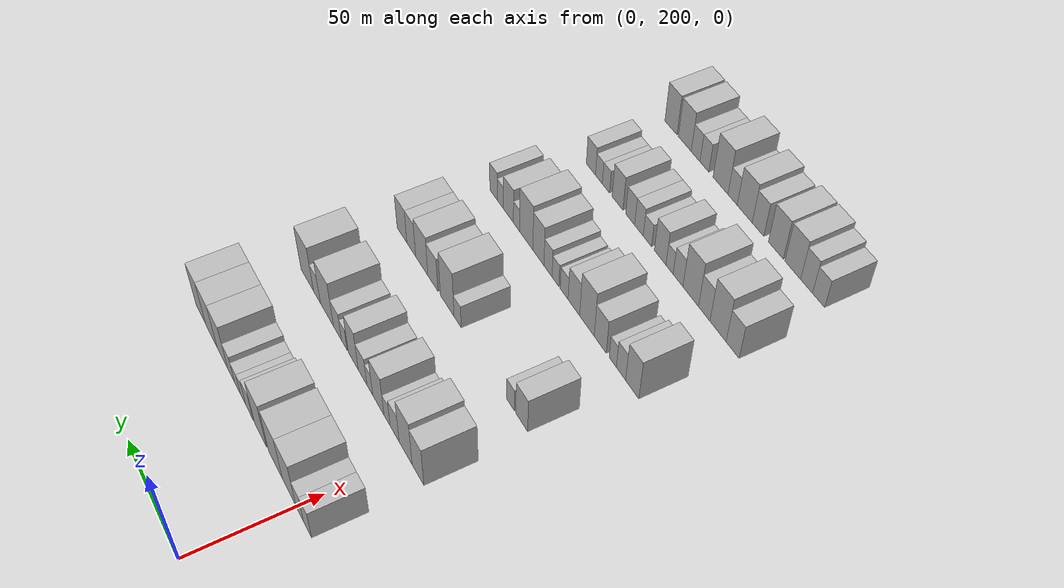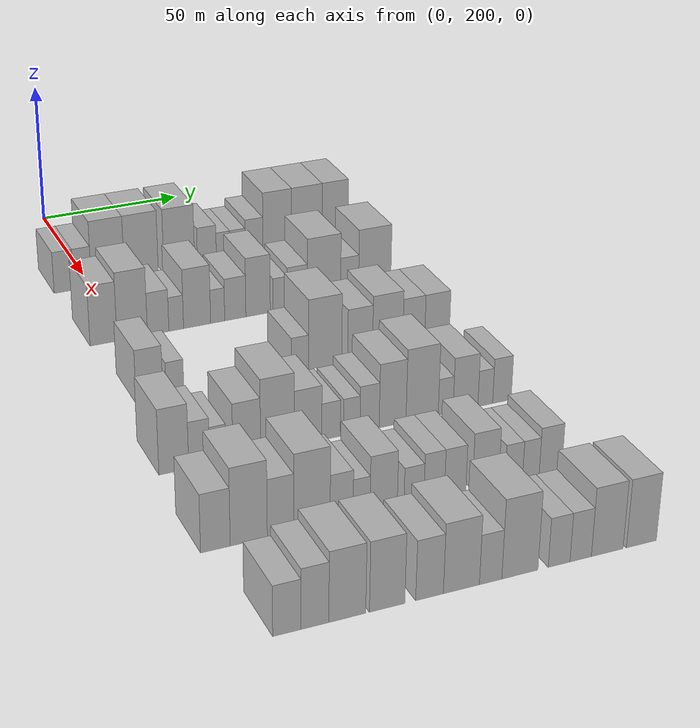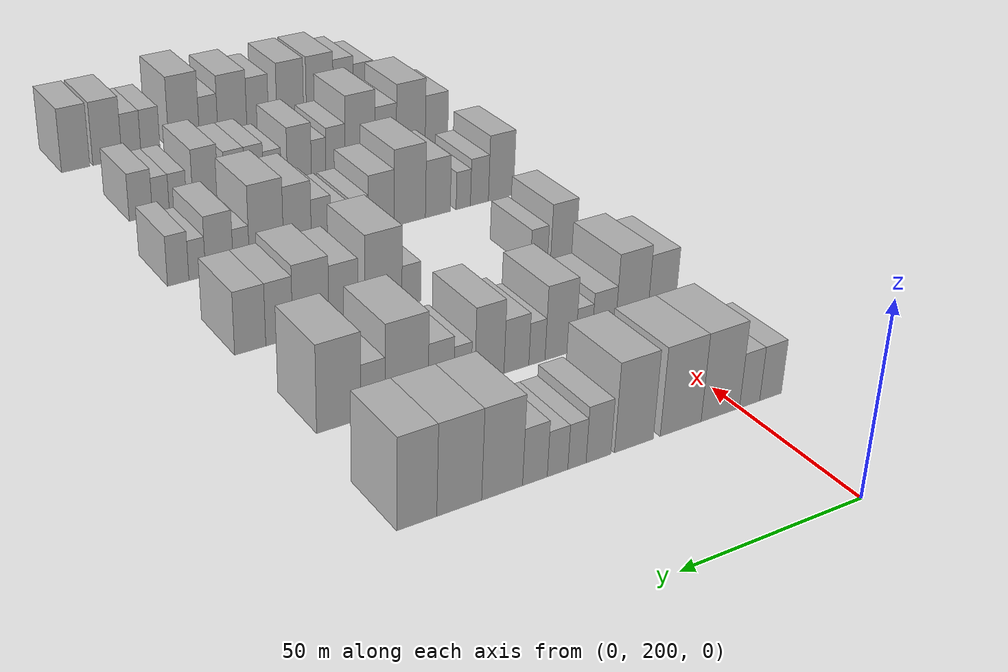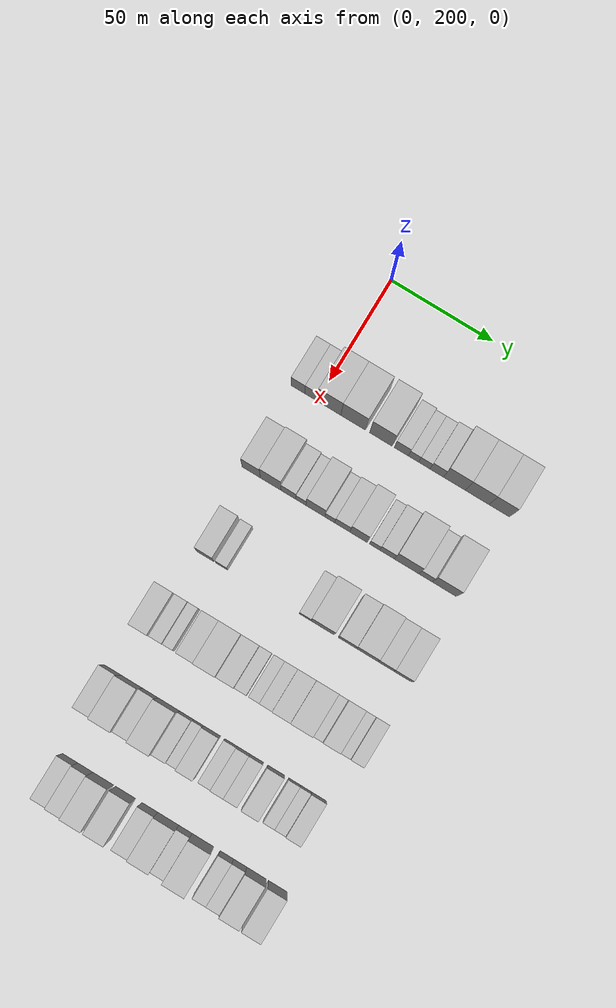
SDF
<sdf version="1.6">
 <world name="default">
  <model name="building_93">
   <static>1</static>
   <pose>50.0000 190.5411 0 0.000000 0.000000 0.000000</pose>
   <link name="link">
    <pose>0 0 7.50 0 0 0</pose>
    <collision name="collision"><geometry><box><size>20.0000 6.7310 15.0000</size></box></geometry></collision>
    <visual name="visual">
     <cast_shadows>0</cast_shadows>
     <geometry><box><size>20.0000 6.7310 15.0000</size></box></geometry>
     <material>
      <script>
       <uri>model://HANNAS_wall/materials/scripts</uri>
       <uri>model://HANNAS_wall/materials/textures</uri>
       <name>vrc/HANNAS_wall</name>
      </script>
     </material>
    </visual>
   </link>
  </model>
  <model name="building_94">
   <static>1</static>
   <pose>50.0000 196.9932 0 0.000000 0.000000 0.000000</pose>
   <link name="link">
    <pose>0 0 7.50 0 0 0</pose>
    <collision name="collision"><geometry><box><size>20.0000 6.1733 15.0000</size></box></geometry></collision>
    <visual name="visual">
     <cast_shadows>0</cast_shadows>
     <geometry><box><size>20.0000 6.1733 15.0000</size></box></geometry>
     <material>
      <script>
       <uri>model://HANNAS_wall/materials/scripts</uri>
       <uri>model://HANNAS_wall/materials/textures</uri>
       <name>vrc/HANNAS_wall</name>
      </script>
     </material>
    </visual>
   </link>
  </model>
  <model name="building_95">
   <static>1</static>
   <pose>50.0000 205.8613 0 0.000000 0.000000 0.000000</pose>
   <link name="link">
    <pose>0 0 12.00 0 0 0</pose>
    <collision name="collision"><geometry><box><size>20.0000 11.5629 24.0000</size></box></geometry></collision>
    <visual name="visual">
     <cast_shadows>0</cast_shadows>
     <geometry><box><size>20.0000 11.5629 24.0000</size></box></geometry>
     <material>
      <script>
       <uri>model://HANNAS_wall/materials/scripts</uri>
       <uri>model://HANNAS_wall/materials/textures</uri>
       <name>vrc/HANNAS_wall</name>
      </script>
     </material>
    </visual>
   </link>
  </model>
  <model name="building_96">
   <static>1</static>
   <pose>50.0000 217.6340 0 0.000000 0.000000 0.000000</pose>
   <link name="link">
    <pose>0 0 12.00 0 0 0</pose>
    <collision name="collision"><geometry><box><size>20.0000 11.9823 24.0000</size></box></geometry></collision>
    <visual name="visual">
     <cast_shadows>0</cast_shadows>
     <geometry><box><size>20.0000 11.9823 24.0000</size></box></geometry>
     <material>
      <script>
       <uri>model://HANNAS_wall/materials/scripts</uri>
       <uri>model://HANNAS_wall/materials/textures</uri>
       <name>vrc/HANNAS_wall</name>
      </script>
     </material>
    </visual>
   </link>
  </model>
  <model name="building_97">
   <static>1</static>
   <pose>50.0000 231.1465 0 0.000000 0.000000 0.000000</pose>
   <link name="link">
    <pose>0 0 12.00 0 0 0</pose>
    <collision name="collision"><geometry><box><size>20.0000 11.0429 24.0000</size></box></geometry></collision>
    <visual name="visual">
     <cast_shadows>0</cast_shadows>
     <geometry><box><size>20.0000 11.0429 24.0000</size></box></geometry>
     <material>
      <script>
       <uri>model://HANNAS_wall/materials/scripts</uri>
       <uri>model://HANNAS_wall/materials/textures</uri>
       <name>vrc/HANNAS_wall</name>
      </script>
     </material>
    </visual>
   </link>
  </model>
  <model name="building_98">
   <static>1</static>
   <pose>50.0000 241.1148 0 0.000000 0.000000 0.000000</pose>
   <link name="link">
    <pose>0 0 7.50 0 0 0</pose>
    <collision name="collision"><geometry><box><size>20.0000 6.8937 15.0000</size></box></geometry></collision>
    <visual name="visual">
     <cast_shadows>0</cast_shadows>
     <geometry><box><size>20.0000 6.8937 15.0000</size></box></geometry>
     <material>
      <script>
       <uri>model://HANNAS_wall/materials/scripts</uri>
       <uri>model://HANNAS_wall/materials/textures</uri>
       <name>vrc/HANNAS_wall</name>
      </script>
     </material>
    </visual>
   </link>
  </model>
  <model name="building_99">
   <static>1</static>
   <pose>50.0000 247.0590 0 0.000000 0.000000 0.000000</pose>
   <link name="link">
    <pose>0 0 6.00 0 0 0</pose>
    <collision name="collision"><geometry><box><size>20.0000 4.9947 12.0000</size></box></geometry></collision>
    <visual name="visual">
     <cast_shadows>0</cast_shadows>
     <geometry><box><size>20.0000 4.9947 12.0000</size></box></geometry>
     <material>
      <script>
       <uri>model://HANNAS_wall/materials/scripts</uri>
       <uri>model://HANNAS_wall/materials/textures</uri>
       <name>vrc/HANNAS_wall</name>
      </script>
     </material>
    </visual>
   </link>
  </model>
  <model name="building_100">
   <static>1</static>
   <pose>50.0000 252.3329 0 0.000000 0.000000 0.000000</pose>
   <link name="link">
    <pose>0 0 6.00 0 0 0</pose>
    <collision name="collision"><geometry><box><size>20.0000 5.5530 12.0000</size></box></geometry></collision>
    <visual name="visual">
     <cast_shadows>0</cast_shadows>
     <geometry><box><size>20.0000 5.5530 12.0000</size></box></geometry>
     <material>
      <script>
       <uri>model://HANNAS_wall/materials/scripts</uri>
       <uri>model://HANNAS_wall/materials/textures</uri>
       <name>vrc/HANNAS_wall</name>
      </script>
     </material>
    </visual>
   </link>
  </model>
  <model name="building_101">
   <static>1</static>
   <pose>50.0000 258.4077 0 0.000000 0.000000 0.000000</pose>
   <link name="link">
    <pose>0 0 7.50 0 0 0</pose>
    <collision name="collision"><geometry><box><size>20.0000 6.5966 15.0000</size></box></geometry></collision>
    <visual name="visual">
     <cast_shadows>0</cast_shadows>
     <geometry><box><size>20.0000 6.5966 15.0000</size></box></geometry>
     <material>
      <script>
       <uri>model://HANNAS_wall/materials/scripts</uri>
       <uri>model://HANNAS_wall/materials/textures</uri>
       <name>vrc/HANNAS_wall</name>
      </script>
     </material>
    </visual>
   </link>
  </model>
  <model name="building_102">
   <static>1</static>
   <pose>50.0000 267.0427 0 0.000000 0.000000 0.000000</pose>
   <link name="link">
    <pose>0 0 12.00 0 0 0</pose>
    <collision name="collision"><geometry><box><size>20.0000 10.6733 24.0000</size></box></geometry></collision>
    <visual name="visual">
     <cast_shadows>0</cast_shadows>
     <geometry><box><size>20.0000 10.6733 24.0000</size></box></geometry>
     <material>
      <script>
       <uri>model://HANNAS_wall/materials/scripts</uri>
       <uri>model://HANNAS_wall/materials/textures</uri>
       <name>vrc/HANNAS_wall</name>
      </script>
     </material>
    </visual>
   </link>
  </model>
  <model name="building_103">
   <static>1</static>
   <pose>50.0000 278.0843 0 0.000000 0.000000 0.000000</pose>
   <link name="link">
    <pose>0 0 12.00 0 0 0</pose>
    <collision name="collision"><geometry><box><size>20.0000 11.4099 24.0000</size></box></geometry></collision>
    <visual name="visual">
     <cast_shadows>0</cast_shadows>
     <geometry><box><size>20.0000 11.4099 24.0000</size></box></geometry>
     <material>
      <script>
       <uri>model://HANNAS_wall/materials/scripts</uri>
       <uri>model://HANNAS_wall/materials/textures</uri>
       <name>vrc/HANNAS_wall</name>
      </script>
     </material>
    </visual>
   </link>
  </model>
  <model name="building_104">
   <static>1</static>
   <pose>50.0000 288.7622 0 0.000000 0.000000 0.000000</pose>
   <link name="link">
    <pose>0 0 12.00 0 0 0</pose>
    <collision name="collision"><geometry><box><size>20.0000 9.9458 24.0000</size></box></geometry></collision>
    <visual name="visual">
     <cast_shadows>0</cast_shadows>
     <geometry><box><size>20.0000 9.9458 24.0000</size></box></geometry>
     <material>
      <script>
       <uri>model://HANNAS_wall/materials/scripts</uri>
       <uri>model://HANNAS_wall/materials/textures</uri>
       <name>vrc/HANNAS_wall</name>
      </script>
     </material>
    </visual>
   </link>
  </model>
  <model name="building_234">
   <static>1</static>
   <pose>90.0000 192.1919 0 0.000000 0.000000 0.000000</pose>
   <link name="link">
    <pose>0 0 10.50 0 0 0</pose>
    <collision name="collision"><geometry><box><size>20.0000 8.8745 21.0000</size></box></geometry></collision>
    <visual name="visual">
     <cast_shadows>0</cast_shadows>
     <geometry><box><size>20.0000 8.8745 21.0000</size></box></geometry>
     <material>
      <script>
       <uri>model://HANNAS_wall/materials/scripts</uri>
       <uri>model://HANNAS_wall/materials/textures</uri>
       <name>vrc/HANNAS_wall</name>
      </script>
     </material>
    </visual>
   </link>
  </model>
  <model name="building_235">
   <static>1</static>
   <pose>90.0000 201.6744 0 0.000000 0.000000 0.000000</pose>
   <link name="link">
    <pose>0 0 12.00 0 0 0</pose>
    <collision name="collision"><geometry><box><size>20.0000 10.0904 24.0000</size></box></geometry></collision>
    <visual name="visual">
     <cast_shadows>0</cast_shadows>
     <geometry><box><size>20.0000 10.0904 24.0000</size></box></geometry>
     <material>
      <script>
       <uri>model://HANNAS_wall/materials/scripts</uri>
       <uri>model://HANNAS_wall/materials/textures</uri>
       <name>vrc/HANNAS_wall</name>
      </script>
     </material>
    </visual>
   </link>
  </model>
  <model name="building_236">
   <static>1</static>
   <pose>90.0000 210.3082 0 0.000000 0.000000 0.000000</pose>
   <link name="link">
    <pose>0 0 7.50 0 0 0</pose>
    <collision name="collision"><geometry><box><size>20.0000 7.1773 15.0000</size></box></geometry></collision>
    <visual name="visual">
     <cast_shadows>0</cast_shadows>
     <geometry><box><size>20.0000 7.1773 15.0000</size></box></geometry>
     <material>
      <script>
       <uri>model://HANNAS_wall/materials/scripts</uri>
       <uri>model://HANNAS_wall/materials/textures</uri>
       <name>vrc/HANNAS_wall</name>
      </script>
     </material>
    </visual>
   </link>
  </model>
  <model name="building_237">
   <static>1</static>
   <pose>90.0000 216.3766 0 0.000000 0.000000 0.000000</pose>
   <link name="link">
    <pose>0 0 6.00 0 0 0</pose>
    <collision name="collision"><geometry><box><size>20.0000 4.9593 12.0000</size></box></geometry></collision>
    <visual name="visual">
     <cast_shadows>0</cast_shadows>
     <geometry><box><size>20.0000 4.9593 12.0000</size></box></geometry>
     <material>
      <script>
       <uri>model://HANNAS_wall/materials/scripts</uri>
       <uri>model://HANNAS_wall/materials/textures</uri>
       <name>vrc/HANNAS_wall</name>
      </script>
     </material>
    </visual>
   </link>
  </model>
  <model name="building_238">
   <static>1</static>
   <pose>90.0000 223.4610 0 0.000000 0.000000 0.000000</pose>
   <link name="link">
    <pose>0 0 10.50 0 0 0</pose>
    <collision name="collision"><geometry><box><size>20.0000 9.2094 21.0000</size></box></geometry></collision>
    <visual name="visual">
     <cast_shadows>0</cast_shadows>
     <geometry><box><size>20.0000 9.2094 21.0000</size></box></geometry>
     <material>
      <script>
       <uri>model://HANNAS_wall/materials/scripts</uri>
       <uri>model://HANNAS_wall/materials/textures</uri>
       <name>vrc/HANNAS_wall</name>
      </script>
     </material>
    </visual>
   </link>
  </model>
  <model name="building_239">
   <static>1</static>
   <pose>90.0000 230.4748 0 0.000000 0.000000 0.000000</pose>
   <link name="link">
    <pose>0 0 6.00 0 0 0</pose>
    <collision name="collision"><geometry><box><size>20.0000 4.8182 12.0000</size></box></geometry></collision>
    <visual name="visual">
     <cast_shadows>0</cast_shadows>
     <geometry><box><size>20.0000 4.8182 12.0000</size></box></geometry>
     <material>
      <script>
       <uri>model://HANNAS_wall/materials/scripts</uri>
       <uri>model://HANNAS_wall/materials/textures</uri>
       <name>vrc/HANNAS_wall</name>
      </script>
     </material>
    </visual>
   </link>
  </model>
  <model name="building_240">
   <static>1</static>
   <pose>90.0000 236.5437 0 0.000000 0.000000 0.000000</pose>
   <link name="link">
    <pose>0 0 7.50 0 0 0</pose>
    <collision name="collision"><geometry><box><size>20.0000 7.3196 15.0000</size></box></geometry></collision>
    <visual name="visual">
     <cast_shadows>0</cast_shadows>
     <geometry><box><size>20.0000 7.3196 15.0000</size></box></geometry>
     <material>
      <script>
       <uri>model://HANNAS_wall/materials/scripts</uri>
       <uri>model://HANNAS_wall/materials/textures</uri>
       <name>vrc/HANNAS_wall</name>
      </script>
     </material>
    </visual>
   </link>
  </model>
  <model name="building_241">
   <static>1</static>
   <pose>90.0000 244.4587 0 0.000000 0.000000 0.000000</pose>
   <link name="link">
    <pose>0 0 10.50 0 0 0</pose>
    <collision name="collision"><geometry><box><size>20.0000 8.5104 21.0000</size></box></geometry></collision>
    <visual name="visual">
     <cast_shadows>0</cast_shadows>
     <geometry><box><size>20.0000 8.5104 21.0000</size></box></geometry>
     <material>
      <script>
       <uri>model://HANNAS_wall/materials/scripts</uri>
       <uri>model://HANNAS_wall/materials/textures</uri>
       <name>vrc/HANNAS_wall</name>
      </script>
     </material>
    </visual>
   </link>
  </model>
  <model name="building_242">
   <static>1</static>
   <pose>90.0000 252.1878 0 0.000000 0.000000 0.000000</pose>
   <link name="link">
    <pose>0 0 6.00 0 0 0</pose>
    <collision name="collision"><geometry><box><size>20.0000 4.9479 12.0000</size></box></geometry></collision>
    <visual name="visual">
     <cast_shadows>0</cast_shadows>
     <geometry><box><size>20.0000 4.9479 12.0000</size></box></geometry>
     <material>
      <script>
       <uri>model://HANNAS_wall/materials/scripts</uri>
       <uri>model://HANNAS_wall/materials/textures</uri>
       <name>vrc/HANNAS_wall</name>
      </script>
     </material>
    </visual>
   </link>
  </model>
  <model name="building_243">
   <static>1</static>
   <pose>90.0000 258.2582 0 0.000000 0.000000 0.000000</pose>
   <link name="link">
    <pose>0 0 7.50 0 0 0</pose>
    <collision name="collision"><geometry><box><size>20.0000 7.1927 15.0000</size></box></geometry></collision>
    <visual name="visual">
     <cast_shadows>0</cast_shadows>
     <geometry><box><size>20.0000 7.1927 15.0000</size></box></geometry>
     <material>
      <script>
       <uri>model://HANNAS_wall/materials/scripts</uri>
       <uri>model://HANNAS_wall/materials/textures</uri>
       <name>vrc/HANNAS_wall</name>
      </script>
     </material>
    </visual>
   </link>
  </model>
  <model name="building_244">
   <static>1</static>
   <pose>90.0000 267.7620 0 0.000000 0.000000 0.000000</pose>
   <link name="link">
    <pose>0 0 12.00 0 0 0</pose>
    <collision name="collision"><geometry><box><size>20.0000 11.8150 24.0000</size></box></geometry></collision>
    <visual name="visual">
     <cast_shadows>0</cast_shadows>
     <geometry><box><size>20.0000 11.8150 24.0000</size></box></geometry>
     <material>
      <script>
       <uri>model://HANNAS_wall/materials/scripts</uri>
       <uri>model://HANNAS_wall/materials/textures</uri>
       <name>vrc/HANNAS_wall</name>
      </script>
     </material>
    </visual>
   </link>
  </model>
  <model name="building_245">
   <static>1</static>
   <pose>90.0000 276.9043 0 0.000000 0.000000 0.000000</pose>
   <link name="link">
    <pose>0 0 7.50 0 0 0</pose>
    <collision name="collision"><geometry><box><size>20.0000 6.4695 15.0000</size></box></geometry></collision>
    <visual name="visual">
     <cast_shadows>0</cast_shadows>
     <geometry><box><size>20.0000 6.4695 15.0000</size></box></geometry>
     <material>
      <script>
       <uri>model://HANNAS_wall/materials/scripts</uri>
       <uri>model://HANNAS_wall/materials/textures</uri>
       <name>vrc/HANNAS_wall</name>
      </script>
     </material>
    </visual>
   </link>
  </model>
  <model name="building_246">
   <static>1</static>
   <pose>90.0000 285.9839 0 0.000000 0.000000 0.000000</pose>
   <link name="link">
    <pose>0 0 12.00 0 0 0</pose>
    <collision name="collision"><geometry><box><size>20.0000 11.6897 24.0000</size></box></geometry></collision>
    <visual name="visual">
     <cast_shadows>0</cast_shadows>
     <geometry><box><size>20.0000 11.6897 24.0000</size></box></geometry>
     <material>
      <script>
       <uri>model://HANNAS_wall/materials/scripts</uri>
       <uri>model://HANNAS_wall/materials/textures</uri>
       <name>vrc/HANNAS_wall</name>
      </script>
     </material>
    </visual>
   </link>
  </model>
  <model name="building_364">
   <static>1</static>
   <pose>130.0000 194.3904 0 0.000000 0.000000 0.000000</pose>
   <link name="link">
    <pose>0 0 9.00 0 0 0</pose>
    <collision name="collision"><geometry><box><size>20.0000 8.4108 18.0000</size></box></geometry></collision>
    <visual name="visual">
     <cast_shadows>0</cast_shadows>
     <geometry><box><size>20.0000 8.4108 18.0000</size></box></geometry>
     <material>
      <script>
       <uri>model://HANNAS_wall/materials/scripts</uri>
       <uri>model://HANNAS_wall/materials/textures</uri>
       <name>vrc/HANNAS_wall</name>
      </script>
     </material>
    </visual>
   </link>
  </model>
  <model name="building_365">
   <static>1</static>
   <pose>130.0000 202.4084 0 0.000000 0.000000 0.000000</pose>
   <link name="link">
    <pose>0 0 6.00 0 0 0</pose>
    <collision name="collision"><geometry><box><size>20.0000 5.6252 12.0000</size></box></geometry></collision>
    <visual name="visual">
     <cast_shadows>0</cast_shadows>
     <geometry><box><size>20.0000 5.6252 12.0000</size></box></geometry>
     <material>
      <script>
       <uri>model://HANNAS_wall/materials/scripts</uri>
       <uri>model://HANNAS_wall/materials/textures</uri>
       <name>vrc/HANNAS_wall</name>
      </script>
     </material>
    </visual>
   </link>
  </model>
  <model name="building_366">
   <static>1</static>
   <pose>130.0000 242.8190 0 0.000000 0.000000 0.000000</pose>
   <link name="link">
    <pose>0 0 6.00 0 0 0</pose>
    <collision name="collision"><geometry><box><size>20.0000 5.7320 12.0000</size></box></geometry></collision>
    <visual name="visual">
     <cast_shadows>0</cast_shadows>
     <geometry><box><size>20.0000 5.7320 12.0000</size></box></geometry>
     <material>
      <script>
       <uri>model://HANNAS_wall/materials/scripts</uri>
       <uri>model://HANNAS_wall/materials/textures</uri>
       <name>vrc/HANNAS_wall</name>
      </script>
     </material>
    </visual>
   </link>
  </model>
  <model name="building_367">
   <static>1</static>
   <pose>130.0000 251.2359 0 0.000000 0.000000 0.000000</pose>
   <link name="link">
    <pose>0 0 12.00 0 0 0</pose>
    <collision name="collision"><geometry><box><size>20.0000 11.1019 24.0000</size></box></geometry></collision>
    <visual name="visual">
     <cast_shadows>0</cast_shadows>
     <geometry><box><size>20.0000 11.1019 24.0000</size></box></geometry>
     <material>
      <script>
       <uri>model://HANNAS_wall/materials/scripts</uri>
       <uri>model://HANNAS_wall/materials/textures</uri>
       <name>vrc/HANNAS_wall</name>
      </script>
     </material>
    </visual>
   </link>
  </model>
  <model name="building_368">
   <static>1</static>
   <pose>130.0000 263.0098 0 0.000000 0.000000 0.000000</pose>
   <link name="link">
    <pose>0 0 9.00 0 0 0</pose>
    <collision name="collision"><geometry><box><size>20.0000 8.4459 18.0000</size></box></geometry></collision>
    <visual name="visual">
     <cast_shadows>0</cast_shadows>
     <geometry><box><size>20.0000 8.4459 18.0000</size></box></geometry>
     <material>
      <script>
       <uri>model://HANNAS_wall/materials/scripts</uri>
       <uri>model://HANNAS_wall/materials/textures</uri>
       <name>vrc/HANNAS_wall</name>
      </script>
     </material>
    </visual>
   </link>
  </model>
  <model name="building_369">
   <static>1</static>
   <pose>130.0000 272.4073 0 0.000000 0.000000 0.000000</pose>
   <link name="link">
    <pose>0 0 10.50 0 0 0</pose>
    <collision name="collision"><geometry><box><size>20.0000 10.3490 21.0000</size></box></geometry></collision>
    <visual name="visual">
     <cast_shadows>0</cast_shadows>
     <geometry><box><size>20.0000 10.3490 21.0000</size></box></geometry>
     <material>
      <script>
       <uri>model://HANNAS_wall/materials/scripts</uri>
       <uri>model://HANNAS_wall/materials/textures</uri>
       <name>vrc/HANNAS_wall</name>
      </script>
     </material>
    </visual>
   </link>
  </model>
  <model name="building_370">
   <static>1</static>
   <pose>130.0000 281.3838 0 0.000000 0.000000 0.000000</pose>
   <link name="link">
    <pose>0 0 9.00 0 0 0</pose>
    <collision name="collision"><geometry><box><size>20.0000 7.6039 18.0000</size></box></geometry></collision>
    <visual name="visual">
     <cast_shadows>0</cast_shadows>
     <geometry><box><size>20.0000 7.6039 18.0000</size></box></geometry>
     <material>
      <script>
       <uri>model://HANNAS_wall/materials/scripts</uri>
       <uri>model://HANNAS_wall/materials/textures</uri>
       <name>vrc/HANNAS_wall</name>
      </script>
     </material>
    </visual>
   </link>
  </model>
  <model name="building_371">
   <static>1</static>
   <pose>130.0000 289.4956 0 0.000000 0.000000 0.000000</pose>
   <link name="link">
    <pose>0 0 9.00 0 0 0</pose>
    <collision name="collision"><geometry><box><size>20.0000 8.6198 18.0000</size></box></geometry></collision>
    <visual name="visual">
     <cast_shadows>0</cast_shadows>
     <geometry><box><size>20.0000 8.6198 18.0000</size></box></geometry>
     <material>
      <script>
       <uri>model://HANNAS_wall/materials/scripts</uri>
       <uri>model://HANNAS_wall/materials/textures</uri>
       <name>vrc/HANNAS_wall</name>
      </script>
     </material>
    </visual>
   </link>
  </model>
  <model name="building_499">
   <static>1</static>
   <pose>170.0000 188.4480 0 0.000000 0.000000 0.000000</pose>
   <link name="link">
    <pose>0 0 10.50 0 0 0</pose>
    <collision name="collision"><geometry><box><size>20.0000 8.7967 21.0000</size></box></geometry></collision>
    <visual name="visual">
     <cast_shadows>0</cast_shadows>
     <geometry><box><size>20.0000 8.7967 21.0000</size></box></geometry>
     <material>
      <script>
       <uri>model://HANNAS_wall/materials/scripts</uri>
       <uri>model://HANNAS_wall/materials/textures</uri>
       <name>vrc/HANNAS_wall</name>
      </script>
     </material>
    </visual>
   </link>
  </model>
  <model name="building_500">
   <static>1</static>
   <pose>170.0000 195.9710 0 0.000000 0.000000 0.000000</pose>
   <link name="link">
    <pose>0 0 7.50 0 0 0</pose>
    <collision name="collision"><geometry><box><size>20.0000 6.2493 15.0000</size></box></geometry></collision>
    <visual name="visual">
     <cast_shadows>0</cast_shadows>
     <geometry><box><size>20.0000 6.2493 15.0000</size></box></geometry>
     <material>
      <script>
       <uri>model://HANNAS_wall/materials/scripts</uri>
       <uri>model://HANNAS_wall/materials/textures</uri>
       <name>vrc/HANNAS_wall</name>
      </script>
     </material>
    </visual>
   </link>
  </model>
  <model name="building_501">
   <static>1</static>
   <pose>170.0000 201.5603 0 0.000000 0.000000 0.000000</pose>
   <link name="link">
    <pose>0 0 6.00 0 0 0</pose>
    <collision name="collision"><geometry><box><size>20.0000 4.9292 12.0000</size></box></geometry></collision>
    <visual name="visual">
     <cast_shadows>0</cast_shadows>
     <geometry><box><size>20.0000 4.9292 12.0000</size></box></geometry>
     <material>
      <script>
       <uri>model://HANNAS_wall/materials/scripts</uri>
       <uri>model://HANNAS_wall/materials/textures</uri>
       <name>vrc/HANNAS_wall</name>
      </script>
     </material>
    </visual>
   </link>
  </model>
  <model name="building_502">
   <static>1</static>
   <pose>170.0000 210.2270 0 0.000000 0.000000 0.000000</pose>
   <link name="link">
    <pose>0 0 9.00 0 0 0</pose>
    <collision name="collision"><geometry><box><size>20.0000 8.4042 18.0000</size></box></geometry></collision>
    <visual name="visual">
     <cast_shadows>0</cast_shadows>
     <geometry><box><size>20.0000 8.4042 18.0000</size></box></geometry>
     <material>
      <script>
       <uri>model://HANNAS_wall/materials/scripts</uri>
       <uri>model://HANNAS_wall/materials/textures</uri>
       <name>vrc/HANNAS_wall</name>
      </script>
     </material>
    </visual>
   </link>
  </model>
  <model name="building_503">
   <static>1</static>
   <pose>170.0000 219.6383 0 0.000000 0.000000 0.000000</pose>
   <link name="link">
    <pose>0 0 12.00 0 0 0</pose>
    <collision name="collision"><geometry><box><size>20.0000 10.4184 24.0000</size></box></geometry></collision>
    <visual name="visual">
     <cast_shadows>0</cast_shadows>
     <geometry><box><size>20.0000 10.4184 24.0000</size></box></geometry>
     <material>
      <script>
       <uri>model://HANNAS_wall/materials/scripts</uri>
       <uri>model://HANNAS_wall/materials/textures</uri>
       <name>vrc/HANNAS_wall</name>
      </script>
     </material>
    </visual>
   </link>
  </model>
  <model name="building_504">
   <static>1</static>
   <pose>170.0000 229.0678 0 0.000000 0.000000 0.000000</pose>
   <link name="link">
    <pose>0 0 9.00 0 0 0</pose>
    <collision name="collision"><geometry><box><size>20.0000 8.4405 18.0000</size></box></geometry></collision>
    <visual name="visual">
     <cast_shadows>0</cast_shadows>
     <geometry><box><size>20.0000 8.4405 18.0000</size></box></geometry>
     <material>
      <script>
       <uri>model://HANNAS_wall/materials/scripts</uri>
       <uri>model://HANNAS_wall/materials/textures</uri>
       <name>vrc/HANNAS_wall</name>
      </script>
     </material>
    </visual>
   </link>
  </model>
  <model name="building_505">
   <static>1</static>
   <pose>170.0000 236.1866 0 0.000000 0.000000 0.000000</pose>
   <link name="link">
    <pose>0 0 6.00 0 0 0</pose>
    <collision name="collision"><geometry><box><size>20.0000 5.7971 12.0000</size></box></geometry></collision>
    <visual name="visual">
     <cast_shadows>0</cast_shadows>
     <geometry><box><size>20.0000 5.7971 12.0000</size></box></geometry>
     <material>
      <script>
       <uri>model://HANNAS_wall/materials/scripts</uri>
       <uri>model://HANNAS_wall/materials/textures</uri>
       <name>vrc/HANNAS_wall</name>
      </script>
     </material>
    </visual>
   </link>
  </model>
  <model name="building_506">
   <static>1</static>
   <pose>170.0000 242.6709 0 0.000000 0.000000 0.000000</pose>
   <link name="link">
    <pose>0 0 6.00 0 0 0</pose>
    <collision name="collision"><geometry><box><size>20.0000 5.1715 12.0000</size></box></geometry></collision>
    <visual name="visual">
     <cast_shadows>0</cast_shadows>
     <geometry><box><size>20.0000 5.1715 12.0000</size></box></geometry>
     <material>
      <script>
       <uri>model://HANNAS_wall/materials/scripts</uri>
       <uri>model://HANNAS_wall/materials/textures</uri>
       <name>vrc/HANNAS_wall</name>
      </script>
     </material>
    </visual>
   </link>
  </model>
  <model name="building_507">
   <static>1</static>
   <pose>170.0000 248.3215 0 0.000000 0.000000 0.000000</pose>
   <link name="link">
    <pose>0 0 7.50 0 0 0</pose>
    <collision name="collision"><geometry><box><size>20.0000 6.1296 15.0000</size></box></geometry></collision>
    <visual name="visual">
     <cast_shadows>0</cast_shadows>
     <geometry><box><size>20.0000 6.1296 15.0000</size></box></geometry>
     <material>
      <script>
       <uri>model://HANNAS_wall/materials/scripts</uri>
       <uri>model://HANNAS_wall/materials/textures</uri>
       <name>vrc/HANNAS_wall</name>
      </script>
     </material>
    </visual>
   </link>
  </model>
  <model name="building_508">
   <static>1</static>
   <pose>170.0000 255.6932 0 0.000000 0.000000 0.000000</pose>
   <link name="link">
    <pose>0 0 10.50 0 0 0</pose>
    <collision name="collision"><geometry><box><size>20.0000 8.6138 21.0000</size></box></geometry></collision>
    <visual name="visual">
     <cast_shadows>0</cast_shadows>
     <geometry><box><size>20.0000 8.6138 21.0000</size></box></geometry>
     <material>
      <script>
       <uri>model://HANNAS_wall/materials/scripts</uri>
       <uri>model://HANNAS_wall/materials/textures</uri>
       <name>vrc/HANNAS_wall</name>
      </script>
     </material>
    </visual>
   </link>
  </model>
  <model name="building_509">
   <static>1</static>
   <pose>170.0000 265.2322 0 0.000000 0.000000 0.000000</pose>
   <link name="link">
    <pose>0 0 12.00 0 0 0</pose>
    <collision name="collision"><geometry><box><size>20.0000 10.4642 24.0000</size></box></geometry></collision>
    <visual name="visual">
     <cast_shadows>0</cast_shadows>
     <geometry><box><size>20.0000 10.4642 24.0000</size></box></geometry>
     <material>
      <script>
       <uri>model://HANNAS_wall/materials/scripts</uri>
       <uri>model://HANNAS_wall/materials/textures</uri>
       <name>vrc/HANNAS_wall</name>
      </script>
     </material>
    </visual>
   </link>
  </model>
  <model name="building_510">
   <static>1</static>
   <pose>170.0000 272.8981 0 0.000000 0.000000 0.000000</pose>
   <link name="link">
    <pose>0 0 6.00 0 0 0</pose>
    <collision name="collision"><geometry><box><size>20.0000 4.8676 12.0000</size></box></geometry></collision>
    <visual name="visual">
     <cast_shadows>0</cast_shadows>
     <geometry><box><size>20.0000 4.8676 12.0000</size></box></geometry>
     <material>
      <script>
       <uri>model://HANNAS_wall/materials/scripts</uri>
       <uri>model://HANNAS_wall/materials/textures</uri>
       <name>vrc/HANNAS_wall</name>
      </script>
     </material>
    </visual>
   </link>
  </model>
  <model name="building_511">
   <static>1</static>
   <pose>170.0000 279.4426 0 0.000000 0.000000 0.000000</pose>
   <link name="link">
    <pose>0 0 9.00 0 0 0</pose>
    <collision name="collision"><geometry><box><size>20.0000 8.2214 18.0000</size></box></geometry></collision>
    <visual name="visual">
     <cast_shadows>0</cast_shadows>
     <geometry><box><size>20.0000 8.2214 18.0000</size></box></geometry>
     <material>
      <script>
       <uri>model://HANNAS_wall/materials/scripts</uri>
       <uri>model://HANNAS_wall/materials/textures</uri>
       <name>vrc/HANNAS_wall</name>
      </script>
     </material>
    </visual>
   </link>
  </model>
  <model name="building_512">
   <static>1</static>
   <pose>170.0000 286.0126 0 0.000000 0.000000 0.000000</pose>
   <link name="link">
    <pose>0 0 6.00 0 0 0</pose>
    <collision name="collision"><geometry><box><size>20.0000 4.9186 12.0000</size></box></geometry></collision>
    <visual name="visual">
     <cast_shadows>0</cast_shadows>
     <geometry><box><size>20.0000 4.9186 12.0000</size></box></geometry>
     <material>
      <script>
       <uri>model://HANNAS_wall/materials/scripts</uri>
       <uri>model://HANNAS_wall/materials/textures</uri>
       <name>vrc/HANNAS_wall</name>
      </script>
     </material>
    </visual>
   </link>
  </model>
  <model name="building_513">
   <static>1</static>
   <pose>170.0000 291.5736 0 0.000000 0.000000 0.000000</pose>
   <link name="link">
    <pose>0 0 7.50 0 0 0</pose>
    <collision name="collision"><geometry><box><size>20.0000 6.2034 15.0000</size></box></geometry></collision>
    <visual name="visual">
     <cast_shadows>0</cast_shadows>
     <geometry><box><size>20.0000 6.2034 15.0000</size></box></geometry>
     <material>
      <script>
       <uri>model://HANNAS_wall/materials/scripts</uri>
       <uri>model://HANNAS_wall/materials/textures</uri>
       <name>vrc/HANNAS_wall</name>
      </script>
     </material>
    </visual>
   </link>
  </model>
  <model name="building_639">
   <static>1</static>
   <pose>210.0000 186.3313 0 0.000000 0.000000 0.000000</pose>
   <link name="link">
    <pose>0 0 9.00 0 0 0</pose>
    <collision name="collision"><geometry><box><size>20.0000 8.2535 18.0000</size></box></geometry></collision>
    <visual name="visual">
     <cast_shadows>0</cast_shadows>
     <geometry><box><size>20.0000 8.2535 18.0000</size></box></geometry>
     <material>
      <script>
       <uri>model://HANNAS_wall/materials/scripts</uri>
       <uri>model://HANNAS_wall/materials/textures</uri>
       <name>vrc/HANNAS_wall</name>
      </script>
     </material>
    </visual>
   </link>
  </model>
  <model name="building_640">
   <static>1</static>
   <pose>210.0000 195.6629 0 0.000000 0.000000 0.000000</pose>
   <link name="link">
    <pose>0 0 12.00 0 0 0</pose>
    <collision name="collision"><geometry><box><size>20.0000 10.4098 24.0000</size></box></geometry></collision>
    <visual name="visual">
     <cast_shadows>0</cast_shadows>
     <geometry><box><size>20.0000 10.4098 24.0000</size></box></geometry>
     <material>
      <script>
       <uri>model://HANNAS_wall/materials/scripts</uri>
       <uri>model://HANNAS_wall/materials/textures</uri>
       <name>vrc/HANNAS_wall</name>
      </script>
     </material>
    </visual>
   </link>
  </model>
  <model name="building_641">
   <static>1</static>
   <pose>210.0000 204.6259 0 0.000000 0.000000 0.000000</pose>
   <link name="link">
    <pose>0 0 9.00 0 0 0</pose>
    <collision name="collision"><geometry><box><size>20.0000 7.5163 18.0000</size></box></geometry></collision>
    <visual name="visual">
     <cast_shadows>0</cast_shadows>
     <geometry><box><size>20.0000 7.5163 18.0000</size></box></geometry>
     <material>
      <script>
       <uri>model://HANNAS_wall/materials/scripts</uri>
       <uri>model://HANNAS_wall/materials/textures</uri>
       <name>vrc/HANNAS_wall</name>
      </script>
     </material>
    </visual>
   </link>
  </model>
  <model name="building_642">
   <static>1</static>
   <pose>210.0000 213.6179 0 0.000000 0.000000 0.000000</pose>
   <link name="link">
    <pose>0 0 12.00 0 0 0</pose>
    <collision name="collision"><geometry><box><size>20.0000 10.4677 24.0000</size></box></geometry></collision>
    <visual name="visual">
     <cast_shadows>0</cast_shadows>
     <geometry><box><size>20.0000 10.4677 24.0000</size></box></geometry>
     <material>
      <script>
       <uri>model://HANNAS_wall/materials/scripts</uri>
       <uri>model://HANNAS_wall/materials/textures</uri>
       <name>vrc/HANNAS_wall</name>
      </script>
     </material>
    </visual>
   </link>
  </model>
  <model name="building_643">
   <static>1</static>
   <pose>210.0000 222.2002 0 0.000000 0.000000 0.000000</pose>
   <link name="link">
    <pose>0 0 7.50 0 0 0</pose>
    <collision name="collision"><geometry><box><size>20.0000 6.6969 15.0000</size></box></geometry></collision>
    <visual name="visual">
     <cast_shadows>0</cast_shadows>
     <geometry><box><size>20.0000 6.6969 15.0000</size></box></geometry>
     <material>
      <script>
       <uri>model://HANNAS_wall/materials/scripts</uri>
       <uri>model://HANNAS_wall/materials/textures</uri>
       <name>vrc/HANNAS_wall</name>
      </script>
     </material>
    </visual>
   </link>
  </model>
  <model name="building_644">
   <static>1</static>
   <pose>210.0000 228.0249 0 0.000000 0.000000 0.000000</pose>
   <link name="link">
    <pose>0 0 6.00 0 0 0</pose>
    <collision name="collision"><geometry><box><size>20.0000 4.9524 12.0000</size></box></geometry></collision>
    <visual name="visual">
     <cast_shadows>0</cast_shadows>
     <geometry><box><size>20.0000 4.9524 12.0000</size></box></geometry>
     <material>
      <script>
       <uri>model://HANNAS_wall/materials/scripts</uri>
       <uri>model://HANNAS_wall/materials/textures</uri>
       <name>vrc/HANNAS_wall</name>
      </script>
     </material>
    </visual>
   </link>
  </model>
  <model name="building_645">
   <static>1</static>
   <pose>210.0000 234.5590 0 0.000000 0.000000 0.000000</pose>
   <link name="link">
    <pose>0 0 9.00 0 0 0</pose>
    <collision name="collision"><geometry><box><size>20.0000 8.1160 18.0000</size></box></geometry></collision>
    <visual name="visual">
     <cast_shadows>0</cast_shadows>
     <geometry><box><size>20.0000 8.1160 18.0000</size></box></geometry>
     <material>
      <script>
       <uri>model://HANNAS_wall/materials/scripts</uri>
       <uri>model://HANNAS_wall/materials/textures</uri>
       <name>vrc/HANNAS_wall</name>
      </script>
     </material>
    </visual>
   </link>
  </model>
  <model name="building_646">
   <static>1</static>
   <pose>210.0000 243.5953 0 0.000000 0.000000 0.000000</pose>
   <link name="link">
    <pose>0 0 6.00 0 0 0</pose>
    <collision name="collision"><geometry><box><size>20.0000 5.9566 12.0000</size></box></geometry></collision>
    <visual name="visual">
     <cast_shadows>0</cast_shadows>
     <geometry><box><size>20.0000 5.9566 12.0000</size></box></geometry>
     <material>
      <script>
       <uri>model://HANNAS_wall/materials/scripts</uri>
       <uri>model://HANNAS_wall/materials/textures</uri>
       <name>vrc/HANNAS_wall</name>
      </script>
     </material>
    </visual>
   </link>
  </model>
  <model name="building_647">
   <static>1</static>
   <pose>210.0000 249.6830 0 0.000000 0.000000 0.000000</pose>
   <link name="link">
    <pose>0 0 7.50 0 0 0</pose>
    <collision name="collision"><geometry><box><size>20.0000 6.2187 15.0000</size></box></geometry></collision>
    <visual name="visual">
     <cast_shadows>0</cast_shadows>
     <geometry><box><size>20.0000 6.2187 15.0000</size></box></geometry>
     <material>
      <script>
       <uri>model://HANNAS_wall/materials/scripts</uri>
       <uri>model://HANNAS_wall/materials/textures</uri>
       <name>vrc/HANNAS_wall</name>
      </script>
     </material>
    </visual>
   </link>
  </model>
  <model name="building_648">
   <static>1</static>
   <pose>210.0000 256.0794 0 0.000000 0.000000 0.000000</pose>
   <link name="link">
    <pose>0 0 7.50 0 0 0</pose>
    <collision name="collision"><geometry><box><size>20.0000 6.5741 15.0000</size></box></geometry></collision>
    <visual name="visual">
     <cast_shadows>0</cast_shadows>
     <geometry><box><size>20.0000 6.5741 15.0000</size></box></geometry>
     <material>
      <script>
       <uri>model://HANNAS_wall/materials/scripts</uri>
       <uri>model://HANNAS_wall/materials/textures</uri>
       <name>vrc/HANNAS_wall</name>
      </script>
     </material>
    </visual>
   </link>
  </model>
  <model name="building_649">
   <static>1</static>
   <pose>210.0000 265.4222 0 0.000000 0.000000 0.000000</pose>
   <link name="link">
    <pose>0 0 9.00 0 0 0</pose>
    <collision name="collision"><geometry><box><size>20.0000 8.1115 18.0000</size></box></geometry></collision>
    <visual name="visual">
     <cast_shadows>0</cast_shadows>
     <geometry><box><size>20.0000 8.1115 18.0000</size></box></geometry>
     <material>
      <script>
       <uri>model://HANNAS_wall/materials/scripts</uri>
       <uri>model://HANNAS_wall/materials/textures</uri>
       <name>vrc/HANNAS_wall</name>
      </script>
     </material>
    </visual>
   </link>
  </model>
  <model name="building_650">
   <static>1</static>
   <pose>210.0000 274.2212 0 0.000000 0.000000 0.000000</pose>
   <link name="link">
    <pose>0 0 6.00 0 0 0</pose>
    <collision name="collision"><geometry><box><size>20.0000 5.4864 12.0000</size></box></geometry></collision>
    <visual name="visual">
     <cast_shadows>0</cast_shadows>
     <geometry><box><size>20.0000 5.4864 12.0000</size></box></geometry>
     <material>
      <script>
       <uri>model://HANNAS_wall/materials/scripts</uri>
       <uri>model://HANNAS_wall/materials/textures</uri>
       <name>vrc/HANNAS_wall</name>
      </script>
     </material>
    </visual>
   </link>
  </model>
  <model name="building_651">
   <static>1</static>
   <pose>210.0000 279.5846 0 0.000000 0.000000 0.000000</pose>
   <link name="link">
    <pose>0 0 6.00 0 0 0</pose>
    <collision name="collision"><geometry><box><size>20.0000 5.2404 12.0000</size></box></geometry></collision>
    <visual name="visual">
     <cast_shadows>0</cast_shadows>
     <geometry><box><size>20.0000 5.2404 12.0000</size></box></geometry>
     <material>
      <script>
       <uri>model://HANNAS_wall/materials/scripts</uri>
       <uri>model://HANNAS_wall/materials/textures</uri>
       <name>vrc/HANNAS_wall</name>
      </script>
     </material>
    </visual>
   </link>
  </model>
  <model name="building_652">
   <static>1</static>
   <pose>210.0000 285.7901 0 0.000000 0.000000 0.000000</pose>
   <link name="link">
    <pose>0 0 7.50 0 0 0</pose>
    <collision name="collision"><geometry><box><size>20.0000 7.1705 15.0000</size></box></geometry></collision>
    <visual name="visual">
     <cast_shadows>0</cast_shadows>
     <geometry><box><size>20.0000 7.1705 15.0000</size></box></geometry>
     <material>
      <script>
       <uri>model://HANNAS_wall/materials/scripts</uri>
       <uri>model://HANNAS_wall/materials/textures</uri>
       <name>vrc/HANNAS_wall</name>
      </script>
     </material>
    </visual>
   </link>
  </model>
  <model name="building_767">
   <static>1</static>
   <pose>250.0000 190.3723 0 0.000000 0.000000 0.000000</pose>
   <link name="link">
    <pose>0 0 7.50 0 0 0</pose>
    <collision name="collision"><geometry><box><size>20.0000 7.4207 15.0000</size></box></geometry></collision>
    <visual name="visual">
     <cast_shadows>0</cast_shadows>
     <geometry><box><size>20.0000 7.4207 15.0000</size></box></geometry>
     <material>
      <script>
       <uri>model://HANNAS_wall/materials/scripts</uri>
       <uri>model://HANNAS_wall/materials/textures</uri>
       <name>vrc/HANNAS_wall</name>
      </script>
     </material>
    </visual>
   </link>
  </model>
  <model name="building_768">
   <static>1</static>
   <pose>250.0000 197.8001 0 0.000000 0.000000 0.000000</pose>
   <link name="link">
    <pose>0 0 9.00 0 0 0</pose>
    <collision name="collision"><geometry><box><size>20.0000 7.4350 18.0000</size></box></geometry></collision>
    <visual name="visual">
     <cast_shadows>0</cast_shadows>
     <geometry><box><size>20.0000 7.4350 18.0000</size></box></geometry>
     <material>
      <script>
       <uri>model://HANNAS_wall/materials/scripts</uri>
       <uri>model://HANNAS_wall/materials/textures</uri>
       <name>vrc/HANNAS_wall</name>
      </script>
     </material>
    </visual>
   </link>
  </model>
  <model name="building_769">
   <static>1</static>
   <pose>250.0000 206.4854 0 0.000000 0.000000 0.000000</pose>
   <link name="link">
    <pose>0 0 10.50 0 0 0</pose>
    <collision name="collision"><geometry><box><size>20.0000 9.9354 21.0000</size></box></geometry></collision>
    <visual name="visual">
     <cast_shadows>0</cast_shadows>
     <geometry><box><size>20.0000 9.9354 21.0000</size></box></geometry>
     <material>
      <script>
       <uri>model://HANNAS_wall/materials/scripts</uri>
       <uri>model://HANNAS_wall/materials/textures</uri>
       <name>vrc/HANNAS_wall</name>
      </script>
     </material>
    </visual>
   </link>
  </model>
  <model name="building_770">
   <static>1</static>
   <pose>250.0000 217.2995 0 0.000000 0.000000 0.000000</pose>
   <link name="link">
    <pose>0 0 10.50 0 0 0</pose>
    <collision name="collision"><geometry><box><size>20.0000 9.6928 21.0000</size></box></geometry></collision>
    <visual name="visual">
     <cast_shadows>0</cast_shadows>
     <geometry><box><size>20.0000 9.6928 21.0000</size></box></geometry>
     <material>
      <script>
       <uri>model://HANNAS_wall/materials/scripts</uri>
       <uri>model://HANNAS_wall/materials/textures</uri>
       <name>vrc/HANNAS_wall</name>
      </script>
     </material>
    </visual>
   </link>
  </model>
  <model name="building_771">
   <static>1</static>
   <pose>250.0000 229.0038 0 0.000000 0.000000 0.000000</pose>
   <link name="link">
    <pose>0 0 9.00 0 0 0</pose>
    <collision name="collision"><geometry><box><size>20.0000 7.7158 18.0000</size></box></geometry></collision>
    <visual name="visual">
     <cast_shadows>0</cast_shadows>
     <geometry><box><size>20.0000 7.7158 18.0000</size></box></geometry>
     <material>
      <script>
       <uri>model://HANNAS_wall/materials/scripts</uri>
       <uri>model://HANNAS_wall/materials/textures</uri>
       <name>vrc/HANNAS_wall</name>
      </script>
     </material>
    </visual>
   </link>
  </model>
  <model name="building_772">
   <static>1</static>
   <pose>250.0000 237.9483 0 0.000000 0.000000 0.000000</pose>
   <link name="link">
    <pose>0 0 10.50 0 0 0</pose>
    <collision name="collision"><geometry><box><size>20.0000 10.1732 21.0000</size></box></geometry></collision>
    <visual name="visual">
     <cast_shadows>0</cast_shadows>
     <geometry><box><size>20.0000 10.1732 21.0000</size></box></geometry>
     <material>
      <script>
       <uri>model://HANNAS_wall/materials/scripts</uri>
       <uri>model://HANNAS_wall/materials/textures</uri>
       <name>vrc/HANNAS_wall</name>
      </script>
     </material>
    </visual>
   </link>
  </model>
  <model name="building_773">
   <static>1</static>
   <pose>250.0000 246.2271 0 0.000000 0.000000 0.000000</pose>
   <link name="link">
    <pose>0 0 7.50 0 0 0</pose>
    <collision name="collision"><geometry><box><size>20.0000 6.3842 15.0000</size></box></geometry></collision>
    <visual name="visual">
     <cast_shadows>0</cast_shadows>
     <geometry><box><size>20.0000 6.3842 15.0000</size></box></geometry>
     <material>
      <script>
       <uri>model://HANNAS_wall/materials/scripts</uri>
       <uri>model://HANNAS_wall/materials/textures</uri>
       <name>vrc/HANNAS_wall</name>
      </script>
     </material>
    </visual>
   </link>
  </model>
  <model name="building_774">
   <static>1</static>
   <pose>250.0000 254.6394 0 0.000000 0.000000 0.000000</pose>
   <link name="link">
    <pose>0 0 12.00 0 0 0</pose>
    <collision name="collision"><geometry><box><size>20.0000 10.4404 24.0000</size></box></geometry></collision>
    <visual name="visual">
     <cast_shadows>0</cast_shadows>
     <geometry><box><size>20.0000 10.4404 24.0000</size></box></geometry>
     <material>
      <script>
       <uri>model://HANNAS_wall/materials/scripts</uri>
       <uri>model://HANNAS_wall/materials/textures</uri>
       <name>vrc/HANNAS_wall</name>
      </script>
     </material>
    </visual>
   </link>
  </model>
  <model name="building_775">
   <static>1</static>
   <pose>250.0000 266.0543 0 0.000000 0.000000 0.000000</pose>
   <link name="link">
    <pose>0 0 7.50 0 0 0</pose>
    <collision name="collision"><geometry><box><size>20.0000 6.3894 15.0000</size></box></geometry></collision>
    <visual name="visual">
     <cast_shadows>0</cast_shadows>
     <geometry><box><size>20.0000 6.3894 15.0000</size></box></geometry>
     <material>
      <script>
       <uri>model://HANNAS_wall/materials/scripts</uri>
       <uri>model://HANNAS_wall/materials/textures</uri>
       <name>vrc/HANNAS_wall</name>
      </script>
     </material>
    </visual>
   </link>
  </model>
  <model name="building_776">
   <static>1</static>
   <pose>250.0000 272.4199 0 0.000000 0.000000 0.000000</pose>
   <link name="link">
    <pose>0 0 7.50 0 0 0</pose>
    <collision name="collision"><geometry><box><size>20.0000 6.3419 15.0000</size></box></geometry></collision>
    <visual name="visual">
     <cast_shadows>0</cast_shadows>
     <geometry><box><size>20.0000 6.3419 15.0000</size></box></geometry>
     <material>
      <script>
       <uri>model://HANNAS_wall/materials/scripts</uri>
       <uri>model://HANNAS_wall/materials/textures</uri>
       <name>vrc/HANNAS_wall</name>
      </script>
     </material>
    </visual>
   </link>
  </model>
  <model name="building_777">
   <static>1</static>
   <pose>250.0000 280.3449 0 0.000000 0.000000 0.000000</pose>
   <link name="link">
    <pose>0 0 10.50 0 0 0</pose>
    <collision name="collision"><geometry><box><size>20.0000 9.5081 21.0000</size></box></geometry></collision>
    <visual name="visual">
     <cast_shadows>0</cast_shadows>
     <geometry><box><size>20.0000 9.5081 21.0000</size></box></geometry>
     <material>
      <script>
       <uri>model://HANNAS_wall/materials/scripts</uri>
       <uri>model://HANNAS_wall/materials/textures</uri>
       <name>vrc/HANNAS_wall</name>
      </script>
     </material>
    </visual>
   </link>
  </model>
  <model name="building_778">
   <static>1</static>
   <pose>250.0000 290.6451 0 0.000000 0.000000 0.000000</pose>
   <link name="link">
    <pose>0 0 10.50 0 0 0</pose>
    <collision name="collision"><geometry><box><size>20.0000 9.0922 21.0000</size></box></geometry></collision>
    <visual name="visual">
     <cast_shadows>0</cast_shadows>
     <geometry><box><size>20.0000 9.0922 21.0000</size></box></geometry>
     <material>
      <script>
       <uri>model://HANNAS_wall/materials/scripts</uri>
       <uri>model://HANNAS_wall/materials/textures</uri>
       <name>vrc/HANNAS_wall</name>
      </script>
     </material>
    </visual>
   </link>
  </model>
 </world>
</sdf>
